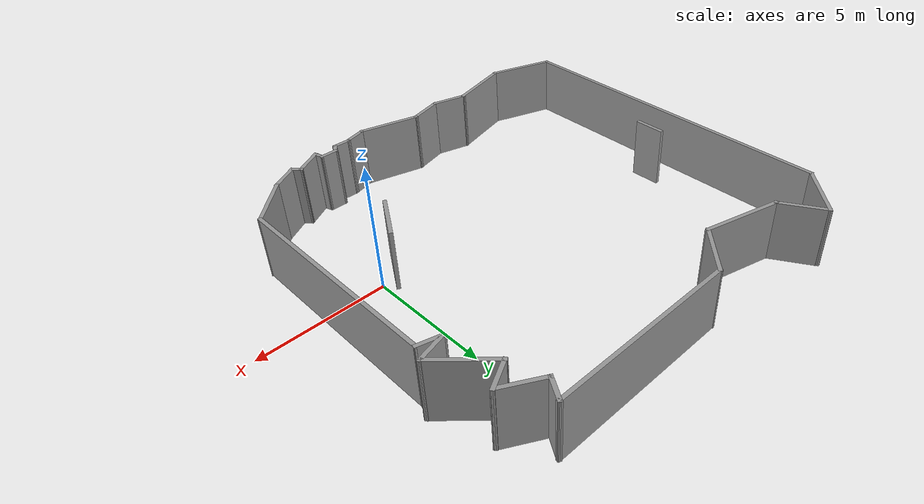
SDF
<?xml version='1.0'?>
<sdf version='1.6'>
  <model name='odd_room'>
    <pose frame=''>-5.45879 2.22787 0 0 -0 0</pose>
    <link name='Wall_0'>
      <collision name='Wall_0_Collision'>
        <geometry>
          <box>
            <size>14 0.15 2.5</size>
          </box>
        </geometry>
        <pose frame=''>0 0 1.25 0 -0 0</pose>
      </collision>
      <visual name='Wall_0_Visual'>
        <pose frame=''>0 0 1.25 0 -0 0</pose>
        <geometry>
          <box>
            <size>14 0.15 2.5</size>
          </box>
        </geometry>
        <material>
          <script>
            <uri>file://media/materials/scripts/gazebo.material</uri>
            <name>Gazebo/Grey</name>
          </script>
          <ambient>1 1 1 1</ambient>
        </material>
        <meta>
          <layer>0</layer>
        </meta>
      </visual>
      <pose frame=''>-8.04285 -0.412639 0 0 -0 1.5708</pose>
    </link>
    <link name='Wall_1'>
      <collision name='Wall_1_Collision'>
        <geometry>
          <box>
            <size>2.5 0.15 2.5</size>
          </box>
        </geometry>
        <pose frame=''>0 0 1.25 0 -0 0</pose>
      </collision>
      <visual name='Wall_1_Visual'>
        <pose frame=''>0 0 1.25 0 -0 0</pose>
        <geometry>
          <box>
            <size>2.5 0.15 2.5</size>
          </box>
        </geometry>
        <material>
          <script>
            <uri>file://media/materials/scripts/gazebo.material</uri>
            <name>Gazebo/Grey</name>
          </script>
          <ambient>1 1 1 1</ambient>
        </material>
        <meta>
          <layer>0</layer>
        </meta>
      </visual>
      <pose frame=''>-7.212 7.34321 0 0 -0 0.785398</pose>
    </link>
    <link name='Wall_10'>
      <collision name='Wall_10_Collision'>
        <geometry>
          <box>
            <size>1.25 0.15 2.5</size>
          </box>
        </geometry>
        <pose frame=''>0 0 1.25 0 -0 0</pose>
      </collision>
      <visual name='Wall_10_Visual'>
        <pose frame=''>0 0 1.25 0 -0 0</pose>
        <geometry>
          <box>
            <size>1.25 0.15 2.5</size>
          </box>
        </geometry>
        <material>
          <script>
            <uri>file://media/materials/scripts/gazebo.material</uri>
            <name>Gazebo/Grey</name>
          </script>
          <ambient>1 1 1 1</ambient>
        </material>
        <meta>
          <layer>0</layer>
        </meta>
      </visual>
      <pose frame=''>7.51159 3.36433 0 0 -0 -2.87979</pose>
    </link>
    <link name='Wall_11'>
      <collision name='Wall_11_Collision'>
        <geometry>
          <box>
            <size>1 0.15 2.5</size>
          </box>
        </geometry>
        <pose frame=''>0 0 1.25 0 -0 0</pose>
      </collision>
      <visual name='Wall_11_Visual'>
        <pose frame=''>0 0 1.25 0 -0 0</pose>
        <geometry>
          <box>
            <size>1 0.15 2.5</size>
          </box>
        </geometry>
        <material>
          <script>
            <uri>file://media/materials/scripts/gazebo.material</uri>
            <name>Gazebo/Grey</name>
          </script>
          <ambient>1 1 1 1</ambient>
        </material>
        <meta>
          <layer>0</layer>
        </meta>
      </visual>
      <pose frame=''>7.39085 3.11198 0 0 -0 -0.261799</pose>
    </link>
    <link name='Wall_12'>
      <collision name='Wall_12_Collision'>
        <geometry>
          <box>
            <size>8.75 0.15 2.5</size>
          </box>
        </geometry>
        <pose frame=''>0 0 1.25 0 -0 0</pose>
      </collision>
      <visual name='Wall_12_Visual'>
        <pose frame=''>0 0 1.25 0 -0 0</pose>
        <geometry>
          <box>
            <size>8.75 0.15 2.5</size>
          </box>
        </geometry>
        <material>
          <script>
            <uri>file://media/materials/scripts/gazebo.material</uri>
            <name>Gazebo/Grey</name>
          </script>
          <ambient>1 1 1 1</ambient>
        </material>
        <meta>
          <layer>0</layer>
        </meta>
      </visual>
      <pose frame=''>7.80137 -1.29802 0 0 -0 -1.5708</pose>
    </link>
    <link name='Wall_13'>
      <collision name='Wall_13_Collision'>
        <geometry>
          <box>
            <size>2.25 0.15 2.5</size>
          </box>
        </geometry>
        <pose frame=''>0 0 1.25 0 -0 0</pose>
      </collision>
      <visual name='Wall_13_Visual'>
        <pose frame=''>0 0 1.25 0 -0 0</pose>
        <geometry>
          <box>
            <size>2.25 0.15 2.5</size>
          </box>
        </geometry>
        <material>
          <script>
            <uri>file://media/materials/scripts/gazebo.material</uri>
            <name>Gazebo/Grey</name>
          </script>
          <ambient>1 1 1 1</ambient>
        </material>
        <meta>
          <layer>0</layer>
        </meta>
      </visual>
      <pose frame=''>7.05891 -6.34048 0 0 -0 -2.35619</pose>
    </link>
    <link name='Wall_14'>
      <collision name='Wall_14_Collision'>
        <geometry>
          <box>
            <size>1.25 0.15 2.5</size>
          </box>
        </geometry>
        <pose frame=''>0 0 1.25 0 -0 0</pose>
      </collision>
      <visual name='Wall_14_Visual'>
        <pose frame=''>0 0 1.25 0 -0 0</pose>
        <geometry>
          <box>
            <size>1.25 0.15 2.5</size>
          </box>
        </geometry>
        <material>
          <script>
            <uri>file://media/materials/scripts/gazebo.material</uri>
            <name>Gazebo/Grey</name>
          </script>
          <ambient>1 1 1 1</ambient>
        </material>
        <meta>
          <layer>0</layer>
        </meta>
      </visual>
      <pose frame=''>5.84014 -7.35794 0 0 -0 -2.61799</pose>
    </link>
    <link name='Wall_15'>
      <collision name='Wall_15_Collision'>
        <geometry>
          <box>
            <size>0.5 0.15 2.5</size>
          </box>
        </geometry>
        <pose frame=''>0 0 1.25 0 -0 0</pose>
      </collision>
      <visual name='Wall_15_Visual'>
        <pose frame=''>0 0 1.25 0 -0 0</pose>
        <geometry>
          <box>
            <size>0.5 0.15 2.5</size>
          </box>
        </geometry>
        <material>
          <script>
            <uri>file://media/materials/scripts/gazebo.material</uri>
            <name>Gazebo/Grey</name>
          </script>
          <ambient>1 1 1 1</ambient>
        </material>
        <meta>
          <layer>0</layer>
        </meta>
      </visual>
      <pose frame=''>5.24008 -7.5092 0 0 -0 2.35619</pose>
    </link>
    <link name='Wall_16'>
      <collision name='Wall_16_Collision'>
        <geometry>
          <box>
            <size>1.25 0.15 2.5</size>
          </box>
        </geometry>
        <pose frame=''>0 0 1.25 0 -0 0</pose>
      </collision>
      <visual name='Wall_16_Visual'>
        <pose frame=''>0 0 1.25 0 -0 0</pose>
        <geometry>
          <box>
            <size>1.25 0.15 2.5</size>
          </box>
        </geometry>
        <material>
          <script>
            <uri>file://media/materials/scripts/gazebo.material</uri>
            <name>Gazebo/Grey</name>
          </script>
          <ambient>1 1 1 1</ambient>
        </material>
        <meta>
          <layer>0</layer>
        </meta>
      </visual>
      <pose frame=''>4.64002 -7.66046 0 0 -0 -2.61799</pose>
    </link>
    <link name='Wall_17'>
      <collision name='Wall_17_Collision'>
        <geometry>
          <box>
            <size>0.5 0.15 2.5</size>
          </box>
        </geometry>
        <pose frame=''>0 0 1.25 0 -0 0</pose>
      </collision>
      <visual name='Wall_17_Visual'>
        <pose frame=''>0 0 1.25 0 -0 0</pose>
        <geometry>
          <box>
            <size>0.5 0.15 2.5</size>
          </box>
        </geometry>
        <material>
          <script>
            <uri>file://media/materials/scripts/gazebo.material</uri>
            <name>Gazebo/Grey</name>
          </script>
          <ambient>1 1 1 1</ambient>
        </material>
        <meta>
          <layer>0</layer>
        </meta>
      </visual>
      <pose frame=''>4.11841 -7.76642 0 0 -0 1.8326</pose>
    </link>
    <link name='Wall_18'>
      <collision name='Wall_18_Collision'>
        <geometry>
          <box>
            <size>0.75 0.15 2.5</size>
          </box>
        </geometry>
        <pose frame=''>0 0 1.25 0 -0 0</pose>
      </collision>
      <visual name='Wall_18_Visual'>
        <pose frame=''>0 0 1.25 0 -0 0</pose>
        <geometry>
          <box>
            <size>0.75 0.15 2.5</size>
          </box>
        </geometry>
        <material>
          <script>
            <uri>file://media/materials/scripts/gazebo.material</uri>
            <name>Gazebo/Grey</name>
          </script>
          <ambient>1 1 1 1</ambient>
        </material>
        <meta>
          <layer>0</layer>
        </meta>
      </visual>
      <pose frame=''>3.77312 -7.59738 0 0 -0 3.14159</pose>
    </link>
    <link name='Wall_19'>
      <collision name='Wall_19_Collision'>
        <geometry>
          <box>
            <size>0.5 0.15 2.5</size>
          </box>
        </geometry>
        <pose frame=''>0 0 1.25 0 -0 0</pose>
      </collision>
      <visual name='Wall_19_Visual'>
        <pose frame=''>0 0 1.25 0 -0 0</pose>
        <geometry>
          <box>
            <size>0.5 0.15 2.5</size>
          </box>
        </geometry>
        <material>
          <script>
            <uri>file://media/materials/scripts/gazebo.material</uri>
            <name>Gazebo/Grey</name>
          </script>
          <ambient>1 1 1 1</ambient>
        </material>
        <meta>
          <layer>0</layer>
        </meta>
      </visual>
      <pose frame=''>3.38562 -7.74894 0 0 -0 -2.0944</pose>
    </link>
    <link name='Wall_2'>
      <collision name='Wall_2_Collision'>
        <geometry>
          <box>
            <size>2 0.15 2.5</size>
          </box>
        </geometry>
        <pose frame=''>0 0 1.25 0 -0 0</pose>
      </collision>
      <visual name='Wall_2_Visual'>
        <pose frame=''>0 0 1.25 0 -0 0</pose>
        <geometry>
          <box>
            <size>2 0.15 2.5</size>
          </box>
        </geometry>
        <material>
          <script>
            <uri>file://media/materials/scripts/gazebo.material</uri>
            <name>Gazebo/Grey</name>
          </script>
          <ambient>1 1 1 1</ambient>
        </material>
        <meta>
          <layer>0</layer>
        </meta>
      </visual>
      <pose frame=''>-5.91865 7.37299 0 0 -0 -1.0472</pose>
    </link>
    <link name='Wall_20'>
      <collision name='Wall_20_Collision'>
        <geometry>
          <box>
            <size>0.75 0.15 2.5</size>
          </box>
        </geometry>
        <pose frame=''>0 0 1.25 0 -0 0</pose>
      </collision>
      <visual name='Wall_20_Visual'>
        <pose frame=''>0 0 1.25 0 -0 0</pose>
        <geometry>
          <box>
            <size>0.75 0.15 2.5</size>
          </box>
        </geometry>
        <material>
          <script>
            <uri>file://media/materials/scripts/gazebo.material</uri>
            <name>Gazebo/Grey</name>
          </script>
          <ambient>1 1 1 1</ambient>
        </material>
        <meta>
          <layer>0</layer>
        </meta>
      </visual>
      <pose frame=''>2.99812 -7.90049 0 0 -0 3.14159</pose>
    </link>
    <link name='Wall_21'>
      <collision name='Wall_21_Collision'>
        <geometry>
          <box>
            <size>0.15 0.15 2.5</size>
          </box>
        </geometry>
        <pose frame=''>0 0 1.25 0 -0 0</pose>
      </collision>
      <visual name='Wall_21_Visual'>
        <pose frame=''>0 0 1.25 0 -0 0</pose>
        <geometry>
          <box>
            <size>0.15 0.15 2.5</size>
          </box>
        </geometry>
        <material>
          <script>
            <uri>file://media/materials/scripts/gazebo.material</uri>
            <name>Gazebo/Grey</name>
          </script>
          <ambient>1 1 1 1</ambient>
        </material>
        <meta>
          <layer>0</layer>
        </meta>
      </visual>
      <pose frame=''>2.69812 -7.90049 0 0 -0 0</pose>
    </link>
    <link name='Wall_22'>
      <collision name='Wall_22_Collision'>
        <geometry>
          <box>
            <size>1 0.15 2.5</size>
          </box>
        </geometry>
        <pose frame=''>0 0 1.25 0 -0 0</pose>
      </collision>
      <visual name='Wall_22_Visual'>
        <pose frame=''>0 0 1.25 0 -0 0</pose>
        <geometry>
          <box>
            <size>1 0.15 2.5</size>
          </box>
        </geometry>
        <material>
          <script>
            <uri>file://media/materials/scripts/gazebo.material</uri>
            <name>Gazebo/Grey</name>
          </script>
          <ambient>1 1 1 1</ambient>
        </material>
        <meta>
          <layer>0</layer>
        </meta>
      </visual>
      <pose frame=''>2.2876 -8.01049 0 0 -0 -2.87979</pose>
    </link>
    <link name='Wall_23'>
      <collision name='Wall_23_Collision'>
        <geometry>
          <box>
            <size>2.5 0.15 2.5</size>
          </box>
        </geometry>
        <pose frame=''>0 0 1.25 0 -0 0</pose>
      </collision>
      <visual name='Wall_23_Visual'>
        <pose frame=''>0 0 1.25 0 -0 0</pose>
        <geometry>
          <box>
            <size>2.5 0.15 2.5</size>
          </box>
        </geometry>
        <material>
          <script>
            <uri>file://media/materials/scripts/gazebo.material</uri>
            <name>Gazebo/Grey</name>
          </script>
          <ambient>1 1 1 1</ambient>
        </material>
        <meta>
          <layer>0</layer>
        </meta>
      </visual>
      <pose frame=''>0.742119 -7.81637 0 0 -0 2.87979</pose>
    </link>
    <link name='Wall_24'>
      <collision name='Wall_24_Collision'>
        <geometry>
          <box>
            <size>1.5 0.15 2.5</size>
          </box>
        </geometry>
        <pose frame=''>0 0 1.25 0 -0 0</pose>
      </collision>
      <visual name='Wall_24_Visual'>
        <pose frame=''>0 0 1.25 0 -0 0</pose>
        <geometry>
          <box>
            <size>1.5 0.15 2.5</size>
          </box>
        </geometry>
        <material>
          <script>
            <uri>file://media/materials/scripts/gazebo.material</uri>
            <name>Gazebo/Grey</name>
          </script>
          <ambient>1 1 1 1</ambient>
        </material>
        <meta>
          <layer>0</layer>
        </meta>
      </visual>
      <pose frame=''>-1.04484 -7.68696 0 0 -0 -2.87979</pose>
    </link>
    <link name='Wall_25'>
      <collision name='Wall_25_Collision'>
        <geometry>
          <box>
            <size>1.5 0.15 2.5</size>
          </box>
        </geometry>
        <pose frame=''>0 0 1.25 0 -0 0</pose>
      </collision>
      <visual name='Wall_25_Visual'>
        <pose frame=''>0 0 1.25 0 -0 0</pose>
        <geometry>
          <box>
            <size>1.5 0.15 2.5</size>
          </box>
        </geometry>
        <material>
          <script>
            <uri>file://media/materials/scripts/gazebo.material</uri>
            <name>Gazebo/Grey</name>
          </script>
          <ambient>1 1 1 1</ambient>
        </material>
        <meta>
          <layer>0</layer>
        </meta>
      </visual>
      <pose frame=''>-2.34884 -7.68696 0 0 -0 2.87979</pose>
    </link>
    <link name='Wall_26'>
      <collision name='Wall_26_Collision'>
        <geometry>
          <box>
            <size>2.75 0.15 2.5</size>
          </box>
        </geometry>
        <pose frame=''>0 0 1.25 0 -0 0</pose>
      </collision>
      <visual name='Wall_26_Visual'>
        <pose frame=''>0 0 1.25 0 -0 0</pose>
        <geometry>
          <box>
            <size>2.75 0.15 2.5</size>
          </box>
        </geometry>
        <material>
          <script>
            <uri>file://media/materials/scripts/gazebo.material</uri>
            <name>Gazebo/Grey</name>
          </script>
          <ambient>1 1 1 1</ambient>
        </material>
        <meta>
          <layer>0</layer>
        </meta>
      </visual>
      <pose frame=''>-4.25655 -7.84873 0 0 -0 -2.87979</pose>
    </link>
    <link name='Wall_27'>
      <collision name='Wall_27_Collision'>
        <geometry>
          <box>
            <size>2.81876 0.15 2.5</size>
          </box>
        </geometry>
        <pose frame=''>0 0 1.25 0 -0 0</pose>
      </collision>
      <visual name='Wall_27_Visual'>
        <pose frame=''>0 0 1.25 0 -0 0</pose>
        <geometry>
          <box>
            <size>2.81876 0.15 2.5</size>
          </box>
        </geometry>
        <material>
          <script>
            <uri>file://media/materials/scripts/gazebo.material</uri>
            <name>Gazebo/Grey</name>
          </script>
          <ambient>1 1 1 1</ambient>
        </material>
        <meta>
          <layer>0</layer>
        </meta>
      </visual>
      <pose frame=''>-6.77755 -7.76142 0 0 -0 2.81841</pose>
    </link>
    <link name='Wall_29'>
      <collision name='Wall_29_Collision'>
        <geometry>
          <box>
            <size>2 0.15 2.5</size>
          </box>
        </geometry>
        <pose frame=''>0 0 1.25 0 -0 0</pose>
      </collision>
      <visual name='Wall_29_Visual'>
        <pose frame=''>0 0 1.25 0 -0 0</pose>
        <geometry>
          <box>
            <size>2 0.15 2.5</size>
          </box>
        </geometry>
        <material>
          <script>
            <uri>file://media/materials/scripts/gazebo.material</uri>
            <name>Gazebo/Grey</name>
          </script>
          <ambient>1 1 1 1</ambient>
        </material>
        <meta>
          <layer>0</layer>
        </meta>
      </visual>
      <pose frame=''>4.64844 -2.60188 0 0 -0 -2.0944</pose>
    </link>
    <link name='Wall_3'>
      <collision name='Wall_3_Collision'>
        <geometry>
          <box>
            <size>3.25 0.15 2.5</size>
          </box>
        </geometry>
        <pose frame=''>0 0 1.25 0 -0 0</pose>
      </collision>
      <visual name='Wall_3_Visual'>
        <pose frame=''>0 0 1.25 0 -0 0</pose>
        <geometry>
          <box>
            <size>3.25 0.15 2.5</size>
          </box>
        </geometry>
        <material>
          <script>
            <uri>file://media/materials/scripts/gazebo.material</uri>
            <name>Gazebo/Grey</name>
          </script>
          <ambient>1 1 1 1</ambient>
        </material>
        <meta>
          <layer>0</layer>
        </meta>
      </visual>
      <pose frame=''>-3.95897 6.17075 0 0 -0 -0.261799</pose>
    </link>
    <link name='Wall_32'>
      <collision name='Wall_32_Collision'>
        <geometry>
          <box>
            <size>1.25 0.15 2.5</size>
          </box>
        </geometry>
        <pose frame=''>0 0 1.25 0 -0 0</pose>
      </collision>
      <visual name='Wall_32_Visual'>
        <pose frame=''>0 0 1.25 0 -0 0</pose>
        <geometry>
          <box>
            <size>1.25 0.15 2.5</size>
          </box>
        </geometry>
        <material>
          <script>
            <uri>file://media/materials/scripts/gazebo.material</uri>
            <name>Gazebo/Grey</name>
          </script>
          <ambient>1 1 1 1</ambient>
        </material>
        <meta>
          <layer>0</layer>
        </meta>
      </visual>
      <pose frame=''>-6.60511 0.00464 0 0 -0 -1.5708</pose>
    </link>
    <link name='Wall_4'>
      <collision name='Wall_4_Collision'>
        <geometry>
          <box>
            <size>2.25 0.15 2.5</size>
          </box>
        </geometry>
        <pose frame=''>0 0 1.25 0 -0 0</pose>
      </collision>
      <visual name='Wall_4_Visual'>
        <pose frame=''>0 0 1.25 0 -0 0</pose>
        <geometry>
          <box>
            <size>2.25 0.15 2.5</size>
          </box>
        </geometry>
        <material>
          <script>
            <uri>file://media/materials/scripts/gazebo.material</uri>
            <name>Gazebo/Grey</name>
          </script>
          <ambient>1 1 1 1</ambient>
        </material>
        <meta>
          <layer>0</layer>
        </meta>
      </visual>
      <pose frame=''>-1.71932 6.51204 0 0 -0 0.785398</pose>
    </link>
    <link name='Wall_5'>
      <collision name='Wall_5_Collision'>
        <geometry>
          <box>
            <size>7.5 0.15 2.5</size>
          </box>
        </geometry>
        <pose frame=''>0 0 1.25 0 -0 0</pose>
      </collision>
      <visual name='Wall_5_Visual'>
        <pose frame=''>0 0 1.25 0 -0 0</pose>
        <geometry>
          <box>
            <size>7.5 0.15 2.5</size>
          </box>
        </geometry>
        <material>
          <script>
            <uri>file://media/materials/scripts/gazebo.material</uri>
            <name>Gazebo/Grey</name>
          </script>
          <ambient>1 1 1 1</ambient>
        </material>
        <meta>
          <layer>0</layer>
        </meta>
      </visual>
      <pose frame=''>2.69814 7.2545 0 0 -0 0</pose>
    </link>
    <link name='Wall_6'>
      <collision name='Wall_6_Collision'>
        <geometry>
          <box>
            <size>1 0.15 2.5</size>
          </box>
        </geometry>
        <pose frame=''>0 0 1.25 0 -0 0</pose>
      </collision>
      <visual name='Wall_6_Visual'>
        <pose frame=''>0 0 1.25 0 -0 0</pose>
        <geometry>
          <box>
            <size>1 0.15 2.5</size>
          </box>
        </geometry>
        <material>
          <script>
            <uri>file://media/materials/scripts/gazebo.material</uri>
            <name>Gazebo/Grey</name>
          </script>
          <ambient>1 1 1 1</ambient>
        </material>
        <meta>
          <layer>0</layer>
        </meta>
      </visual>
      <pose frame=''>6.16064 6.88644 0 0 -0 -2.0944</pose>
    </link>
    <link name='Wall_7'>
      <collision name='Wall_7_Collision'>
        <geometry>
          <box>
            <size>1.75 0.15 2.5</size>
          </box>
        </geometry>
        <pose frame=''>0 0 1.25 0 -0 0</pose>
      </collision>
      <visual name='Wall_7_Visual'>
        <pose frame=''>0 0 1.25 0 -0 0</pose>
        <geometry>
          <box>
            <size>1.75 0.15 2.5</size>
          </box>
        </geometry>
        <material>
          <script>
            <uri>file://media/materials/scripts/gazebo.material</uri>
            <name>Gazebo/Grey</name>
          </script>
          <ambient>1 1 1 1</ambient>
        </material>
        <meta>
          <layer>0</layer>
        </meta>
      </visual>
      <pose frame=''>6.64096 6.11838 0 0 -0 -0.523599</pose>
    </link>
    <link name='Wall_8'>
      <collision name='Wall_8_Collision'>
        <geometry>
          <box>
            <size>1.25 0.15 2.5</size>
          </box>
        </geometry>
        <pose frame=''>0 0 1.25 0 -0 0</pose>
      </collision>
      <visual name='Wall_8_Visual'>
        <pose frame=''>0 0 1.25 0 -0 0</pose>
        <geometry>
          <box>
            <size>1.25 0.15 2.5</size>
          </box>
        </geometry>
        <material>
          <script>
            <uri>file://media/materials/scripts/gazebo.material</uri>
            <name>Gazebo/Grey</name>
          </script>
          <ambient>1 1 1 1</ambient>
        </material>
        <meta>
          <layer>0</layer>
        </meta>
      </visual>
      <pose frame=''>6.85747 5.44338 0 0 -0 -2.61799</pose>
    </link>
    <link name='Wall_9'>
      <collision name='Wall_9_Collision'>
        <geometry>
          <box>
            <size>2.5 0.15 2.5</size>
          </box>
        </geometry>
        <pose frame=''>0 0 1.25 0 -0 0</pose>
      </collision>
      <visual name='Wall_9_Visual'>
        <pose frame=''>0 0 1.25 0 -0 0</pose>
        <geometry>
          <box>
            <size>2.5 0.15 2.5</size>
          </box>
        </geometry>
        <material>
          <script>
            <uri>file://media/materials/scripts/gazebo.material</uri>
            <name>Gazebo/Grey</name>
          </script>
          <ambient>1 1 1 1</ambient>
        </material>
        <meta>
          <layer>0</layer>
        </meta>
      </visual>
      <pose frame=''>7.212 4.33753 0 0 -0 -0.785398</pose>
    </link>
    <static>1</static>
  </model>
</sdf>
